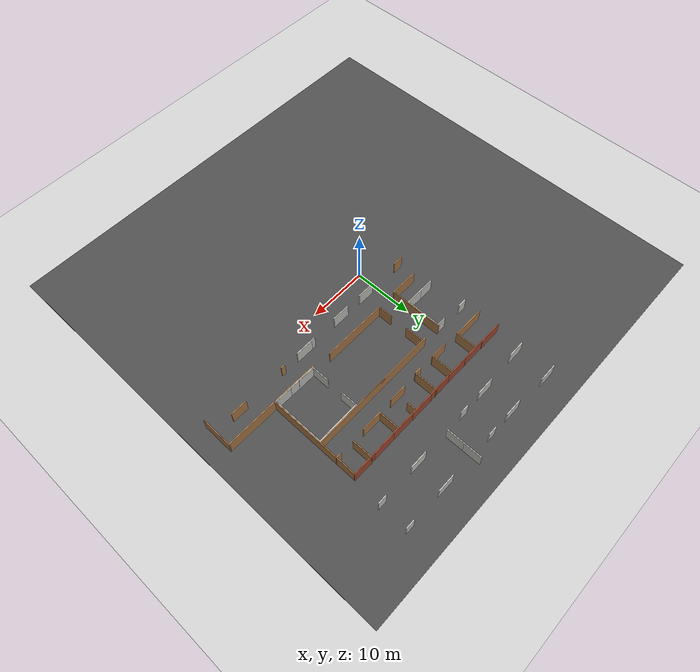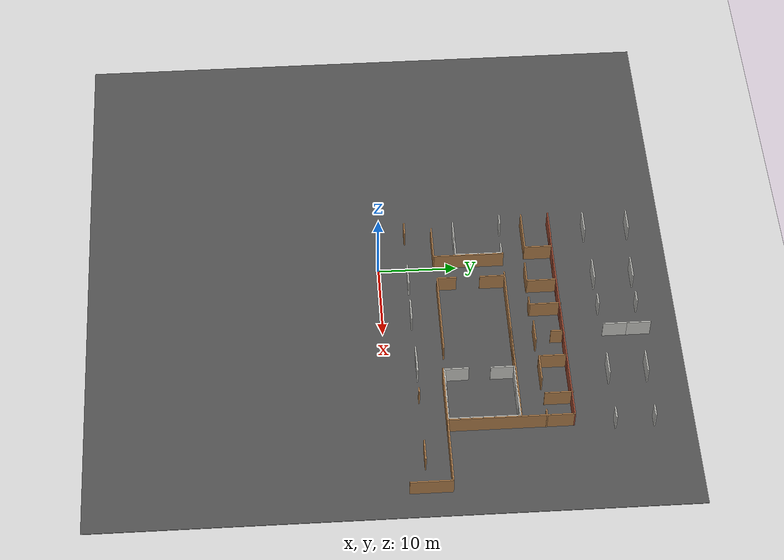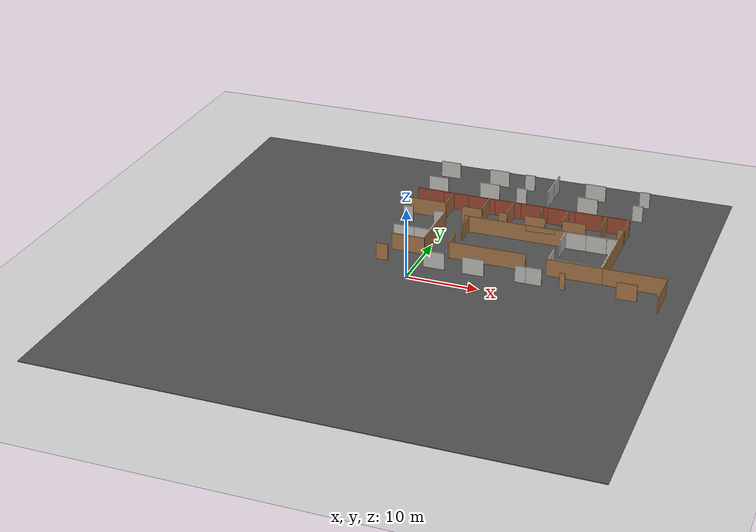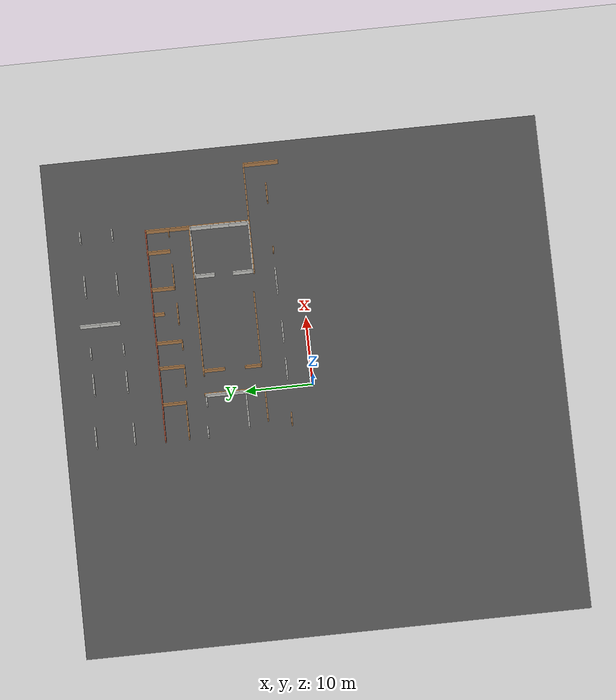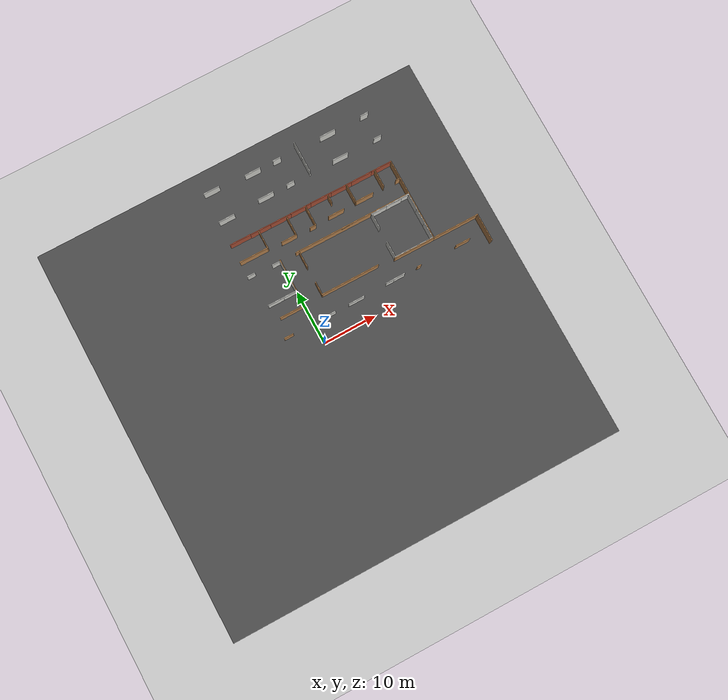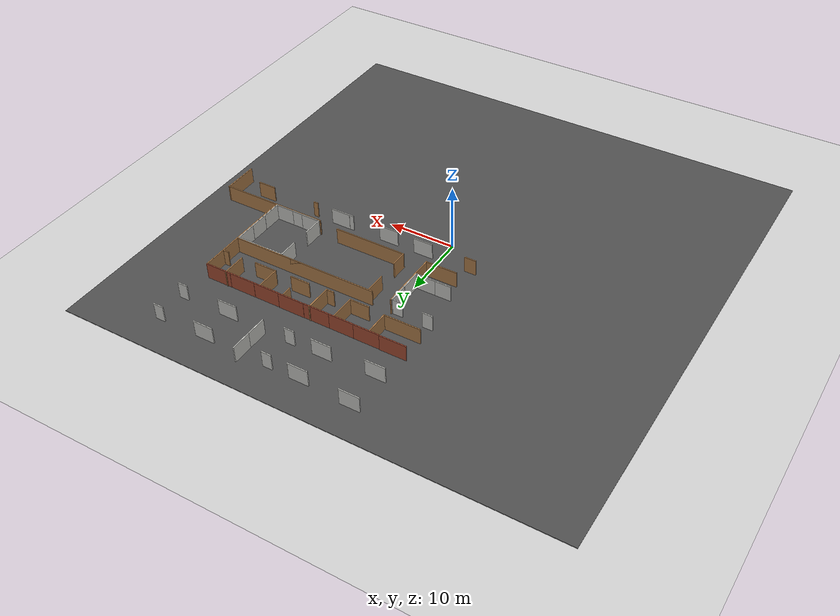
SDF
<sdf version="1.6">
 <world name="default">
  <model name="ground_plane">
   <static>1</static>
   <link name="link">
    <collision name="collision">
     <geometry><plane><normal>0 0 1</normal><size>100 100</size></plane></geometry>
     <surface><friction><ode><mu>100</mu><mu2>50</mu2></ode></friction></surface>
    </collision>
    <visual name="visual">
     <cast_shadows>0</cast_shadows>
     <geometry><plane><normal>0 0 1</normal><size>100 100</size></plane></geometry>
     <material>
      <script><uri>file://media/materials/scripts/gazebo.material</uri><name>Gazebo/Grey</name></script>
     </material>
    </visual>
   </link>
  </model>
  <model name="asphalt_plane">
   <static>1</static>
   <link name="link">
    <collision name="collision"><geometry><box><size>74 74 0.1</size></box></geometry></collision>
    <visual name="visual">
     <cast_shadows>0</cast_shadows>
     <geometry><box><size>74 74 0.1</size></box></geometry>
     <material>
      <script>
       <uri>model://asphalt_plane/materials/scripts</uri>
       <uri>model://asphalt_plane/materials/textures</uri>
       <name>vrc/asphalt</name>
      </script>
     </material>
    </visual>
   </link>
  </model>
  <model name="concrete_wall_1">
   <pose>-0.231026 14.3447 0 0 -0 0</pose>
   <link name="Wall_0">
    <collision name="Wall_0_Collision">
     <geometry><box><size>3 0.15 2.5</size></box></geometry>
     <pose>0 0 1.25 0 -0 0</pose>
    </collision>
    <visual name="Wall_0_Visual">
     <pose>0 0 1.25 0 -0 0</pose>
     <geometry><box><size>3 0.15 2.5</size></box></geometry>
     <material>
      <script><uri>file://media/materials/scripts/gazebo.material</uri><name>Gazebo/CeilingTiled</name></script>
      <ambient>1 1 1 1</ambient>
     </material>
     <meta><layer>0</layer></meta>
    </visual>
    <pose>0 0 0 0 -0 1.5708</pose>
   </link>
   <static>1</static>
  </model>
  <model name="concrete_wall_2">
   <pose>-0.252871 11.4504 0 0 -0 0</pose>
   <link name="Wall_0">
    <collision name="Wall_0_Collision">
     <geometry><box><size>3 0.15 2.5</size></box></geometry>
     <pose>0 0 1.25 0 -0 0</pose>
    </collision>
    <visual name="Wall_0_Visual">
     <pose>0 0 1.25 0 -0 0</pose>
     <geometry><box><size>3 0.15 2.5</size></box></geometry>
     <material>
      <script><uri>file://media/materials/scripts/gazebo.material</uri><name>Gazebo/CeilingTiled</name></script>
      <ambient>1 1 1 1</ambient>
     </material>
     <meta><layer>0</layer></meta>
    </visual>
    <pose>0 0 0 0 -0 1.5708</pose>
   </link>
   <static>1</static>
  </model>
  <model name="concrete_wall_6_clone_4">
   <pose>-1.64895 9.93911 0 0 -0 1.57079</pose>
   <link name="Wall_0">
    <collision name="Wall_0_Collision">
     <geometry><box><size>3 0.15 2.5</size></box></geometry>
     <pose>0 0 1.25 0 -0 0</pose>
    </collision>
    <visual name="Wall_0_Visual">
     <pose>0 0 1.25 0 -0 0</pose>
     <geometry><box><size>3 0.15 2.5</size></box></geometry>
     <material>
      <script><uri>file://media/materials/scripts/gazebo.material</uri><name>Gazebo/CeilingTiled</name></script>
      <ambient>1 1 1 1</ambient>
     </material>
     <meta><layer>0</layer></meta>
    </visual>
    <pose>0 0 0 0 -0 1.5708</pose>
   </link>
   <static>1</static>
  </model>
  <model name="concrete_wall_6_clone_5">
   <pose>-4.08866 9.93655 0 0 -0 1.57079</pose>
   <link name="Wall_0">
    <collision name="Wall_0_Collision">
     <geometry><box><size>3 0.15 2.5</size></box></geometry>
     <pose>0 0 1.25 0 -0 0</pose>
    </collision>
    <visual name="Wall_0_Visual">
     <pose>0 0 1.25 0 -0 0</pose>
     <geometry><box><size>3 0.15 2.5</size></box></geometry>
     <material>
      <script><uri>file://media/materials/scripts/gazebo.material</uri><name>Gazebo/CeilingTiled</name></script>
      <ambient>1 1 1 1</ambient>
     </material>
     <meta><layer>0</layer></meta>
    </visual>
    <pose>0 0 0 0 -0 1.5708</pose>
   </link>
   <static>1</static>
  </model>
  <model name="concrete_wall_6_clone_8">
   <pose>-1.01529 15.8 0 0 -0 1.57079</pose>
   <link name="Wall_0">
    <collision name="Wall_0_Collision">
     <geometry><box><size>1.5 0.15 2.5</size></box></geometry>
     <pose>0 0 1.25 0 -0 0</pose>
    </collision>
    <visual name="Wall_0_Visual">
     <pose>0 0 1.25 0 -0 0</pose>
     <geometry><box><size>1.5 0.15 2.5</size></box></geometry>
     <material>
      <script><uri>file://media/materials/scripts/gazebo.material</uri><name>Gazebo/CeilingTiled</name></script>
      <ambient>1 1 1 1</ambient>
     </material>
     <meta><layer>0</layer></meta>
    </visual>
    <pose>0 0 0 0 -0 1.5708</pose>
   </link>
   <static>1</static>
  </model>
  <model name="concrete_wall_6_clone_15">
   <pose>19.0082 7.09385 0 0 -0 1.57079</pose>
   <link name="Wall_0">
    <collision name="Wall_0_Collision">
     <geometry><box><size>3 0.15 2.5</size></box></geometry>
     <pose>0 0 1.25 0 -0 0</pose>
    </collision>
    <visual name="Wall_0_Visual">
     <pose>0 0 1.25 0 -0 0</pose>
     <geometry><box><size>3 0.15 2.5</size></box></geometry>
     <material>
      <script><uri>file://media/materials/scripts/gazebo.material</uri><name>Gazebo/CeilingTiled</name></script>
      <ambient>1 1 1 1</ambient>
     </material>
     <meta><layer>0</layer></meta>
    </visual>
    <pose>0 0 0 0 -0 1.5708</pose>
   </link>
   <static>1</static>
  </model>
  <model name="concrete_wall_6_clone_16">
   <pose>20.5949 7.06095 0 0 -0 1.57079</pose>
   <link name="Wall_0">
    <collision name="Wall_0_Collision">
     <geometry><box><size>3 0.15 2.5</size></box></geometry>
     <pose>0 0 1.25 0 -0 0</pose>
    </collision>
    <visual name="Wall_0_Visual">
     <pose>0 0 1.25 0 -0 0</pose>
     <geometry><box><size>3 0.15 2.5</size></box></geometry>
     <material>
      <script><uri>file://media/materials/scripts/gazebo.material</uri><name>Gazebo/CeilingTiled</name></script>
      <ambient>1 1 1 1</ambient>
     </material>
     <meta><layer>0</layer></meta>
    </visual>
    <pose>0 0 0 0 -0 1.5708</pose>
   </link>
   <static>1</static>
  </model>
  <model name="concrete_wall_6_clone_17">
   <pose>23.3706 7.05229 0 0 -0 1.57079</pose>
   <link name="Wall_0">
    <collision name="Wall_0_Collision">
     <geometry><box><size>3 0.15 2.5</size></box></geometry>
     <pose>0 0 1.25 0 -0 0</pose>
    </collision>
    <visual name="Wall_0_Visual">
     <pose>0 0 1.25 0 -0 0</pose>
     <geometry><box><size>3 0.15 2.5</size></box></geometry>
     <material>
      <script><uri>file://media/materials/scripts/gazebo.material</uri><name>Gazebo/CeilingTiled</name></script>
      <ambient>1 1 1 1</ambient>
     </material>
     <meta><layer>0</layer></meta>
    </visual>
    <pose>0 0 0 0 -0 1.5708</pose>
   </link>
   <static>1</static>
  </model>
  <model name="concrete_wall_6_clone_18">
   <pose>23.5039 15.7147 0 0 -0 1.57079</pose>
   <link name="Wall_0">
    <collision name="Wall_0_Collision">
     <geometry><box><size>3 0.15 2.5</size></box></geometry>
     <pose>0 0 1.25 0 -0 0</pose>
    </collision>
    <visual name="Wall_0_Visual">
     <pose>0 0 1.25 0 -0 0</pose>
     <geometry><box><size>3 0.15 2.5</size></box></geometry>
     <material>
      <script><uri>file://media/materials/scripts/gazebo.material</uri><name>Gazebo/CeilingTiled</name></script>
      <ambient>1 1 1 1</ambient>
     </material>
     <meta><layer>0</layer></meta>
    </visual>
    <pose>0 0 0 0 -0 1.5708</pose>
   </link>
   <static>1</static>
  </model>
  <model name="concrete_wall_6_clone_19">
   <pose>21.9639 15.6573 0 0 -0 1.57079</pose>
   <link name="Wall_0">
    <collision name="Wall_0_Collision">
     <geometry><box><size>3 0.15 2.5</size></box></geometry>
     <pose>0 0 1.25 0 -0 0</pose>
    </collision>
    <visual name="Wall_0_Visual">
     <pose>0 0 1.25 0 -0 0</pose>
     <geometry><box><size>3 0.15 2.5</size></box></geometry>
     <material>
      <script><uri>file://media/materials/scripts/gazebo.material</uri><name>Gazebo/CeilingTiled</name></script>
      <ambient>1 1 1 1</ambient>
     </material>
     <meta><layer>0</layer></meta>
    </visual>
    <pose>0 0 0 0 -0 1.5708</pose>
   </link>
   <static>1</static>
  </model>
  <model name="concrete_wall_6_clone_20">
   <pose>19.0587 15.6479 0 0 -0 1.57079</pose>
   <link name="Wall_0">
    <collision name="Wall_0_Collision">
     <geometry><box><size>3 0.15 2.5</size></box></geometry>
     <pose>0 0 1.25 0 -0 0</pose>
    </collision>
    <visual name="Wall_0_Visual">
     <pose>0 0 1.25 0 -0 0</pose>
     <geometry><box><size>3 0.15 2.5</size></box></geometry>
     <material>
      <script><uri>file://media/materials/scripts/gazebo.material</uri><name>Gazebo/CeilingTiled</name></script>
      <ambient>1 1 1 1</ambient>
     </material>
     <meta><layer>0</layer></meta>
    </visual>
    <pose>0 0 0 0 -0 1.5708</pose>
   </link>
   <static>1</static>
  </model>
  <model name="concrete_wall_15">
   <pose>24.8729 8.48253 0 0 -0 0</pose>
   <link name="Wall_0">
    <collision name="Wall_0_Collision">
     <geometry><box><size>3 0.15 2.5</size></box></geometry>
     <pose>0 0 1.25 0 -0 0</pose>
    </collision>
    <visual name="Wall_0_Visual">
     <pose>0 0 1.25 0 -0 0</pose>
     <geometry><box><size>3 0.15 2.5</size></box></geometry>
     <material>
      <script><uri>file://media/materials/scripts/gazebo.material</uri><name>Gazebo/CeilingTiled</name></script>
      <ambient>1 1 1 1</ambient>
     </material>
     <meta><layer>0</layer></meta>
    </visual>
    <pose>0 0 0 0 -0 1.5708</pose>
   </link>
   <static>1</static>
  </model>
  <model name="concrete_wall_16">
   <pose>17.5839 8.5954 0 0 -0 0</pose>
   <link name="Wall_0">
    <collision name="Wall_0_Collision">
     <geometry><box><size>3 0.15 2.5</size></box></geometry>
     <pose>0 0 1.25 0 -0 0</pose>
    </collision>
    <visual name="Wall_0_Visual">
     <pose>0 0 1.25 0 -0 0</pose>
     <geometry><box><size>3 0.15 2.5</size></box></geometry>
     <material>
      <script><uri>file://media/materials/scripts/gazebo.material</uri><name>Gazebo/CeilingTiled</name></script>
      <ambient>1 1 1 1</ambient>
     </material>
     <meta><layer>0</layer></meta>
    </visual>
    <pose>0 0 0 0 -0 1.5708</pose>
   </link>
   <static>1</static>
  </model>
  <model name="concrete_wall_18">
   <pose>17.6374 14.261 0 0 -0 0</pose>
   <link name="Wall_0">
    <collision name="Wall_0_Collision">
     <geometry><box><size>3 0.15 2.5</size></box></geometry>
     <pose>0 0 1.25 0 -0 0</pose>
    </collision>
    <visual name="Wall_0_Visual">
     <pose>0 0 1.25 0 -0 0</pose>
     <geometry><box><size>3 0.15 2.5</size></box></geometry>
     <material>
      <script><uri>file://media/materials/scripts/gazebo.material</uri><name>Gazebo/CeilingTiled</name></script>
      <ambient>1 1 1 1</ambient>
     </material>
     <meta><layer>0</layer></meta>
    </visual>
    <pose>0 0 0 0 -0 1.5708</pose>
   </link>
   <static>1</static>
  </model>
  <model name="concrete_wall_19">
   <pose>24.8866 11.194 0 0 -0 0</pose>
   <link name="Wall_0">
    <collision name="Wall_0_Collision">
     <geometry><box><size>3 0.15 2.5</size></box></geometry>
     <pose>0 0 1.25 0 -0 0</pose>
    </collision>
    <visual name="Wall_0_Visual">
     <pose>0 0 1.25 0 -0 0</pose>
     <geometry><box><size>3 0.15 2.5</size></box></geometry>
     <material>
      <script><uri>file://media/materials/scripts/gazebo.material</uri><name>Gazebo/CeilingTiled</name></script>
      <ambient>1 1 1 1</ambient>
     </material>
     <meta><layer>0</layer></meta>
    </visual>
    <pose>0 0 0 0 -0 1.5708</pose>
   </link>
   <static>1</static>
  </model>
  <model name="concrete_wall_20">
   <pose>24.896 14.1844 0 0 -0 0</pose>
   <link name="Wall_0">
    <collision name="Wall_0_Collision">
     <geometry><box><size>3 0.15 2.5</size></box></geometry>
     <pose>0 0 1.25 0 -0 0</pose>
    </collision>
    <visual name="Wall_0_Visual">
     <pose>0 0 1.25 0 -0 0</pose>
     <geometry><box><size>3 0.15 2.5</size></box></geometry>
     <material>
      <script><uri>file://media/materials/scripts/gazebo.material</uri><name>Gazebo/CeilingTiled</name></script>
      <ambient>1 1 1 1</ambient>
     </material>
     <meta><layer>0</layer></meta>
    </visual>
    <pose>0 0 0 0 -0 1.5708</pose>
   </link>
   <static>1</static>
  </model>
  <model name="willowgarage_v1_1">
   <pose>-14.3408 -3.86286 0 0 -0 0</pose>
   <link name="Wall_100">
    <collision name="Wall_100_Collision">
     <geometry><box><size>3.5 0.15 2.5</size></box></geometry>
     <pose>0 0 1.25 0 -0 0</pose>
    </collision>
    <visual name="Wall_100_Visual">
     <pose>0 0 1.25 0 -0 0</pose>
     <geometry><box><size>3.5 0.15 2.5</size></box></geometry>
     <material>
      <script><uri>file://media/materials/scripts/gazebo.material</uri><name>Gazebo/Wood</name></script>
      <ambient>1 1 1 1</ambient>
     </material>
     <meta><layer>0</layer></meta>
    </visual>
    <pose>32.2598 22.7229 0 0 -0 3.14159</pose>
   </link>
   <link name="Wall_101">
    <collision name="Wall_101_Collision">
     <geometry><box><size>3.5 0.15 2.5</size></box></geometry>
     <pose>0 0 1.25 0 -0 0</pose>
    </collision>
    <visual name="Wall_101_Visual">
     <pose>0 0 1.25 0 -0 0</pose>
     <geometry><box><size>3.5 0.15 2.5</size></box></geometry>
     <material>
      <script><uri>file://media/materials/scripts/gazebo.material</uri><name>Gazebo/Wood</name></script>
      <ambient>1 1 1 1</ambient>
     </material>
     <meta><layer>0</layer></meta>
    </visual>
    <pose>30.5848 24.3979 0 0 -0 1.5708</pose>
   </link>
   <link name="Wall_105">
    <collision name="Wall_105_Collision">
     <geometry><box><size>3 0.15 2.5</size></box></geometry>
     <pose>0 0 1.25 0 -0 0</pose>
    </collision>
    <visual name="Wall_105_Visual">
     <pose>0 0 1.25 0 -0 0</pose>
     <geometry><box><size>3 0.15 2.5</size></box></geometry>
     <material>
      <script><uri>file://media/materials/scripts/gazebo.material</uri><name>Gazebo/Wood</name></script>
      <ambient>1 1 1 1</ambient>
     </material>
     <meta><layer>0</layer></meta>
    </visual>
    <pose>26.6647 22.5998 0 0 -0 3.14159</pose>
   </link>
   <link name="Wall_107">
    <collision name="Wall_107_Collision">
     <geometry><box><size>1.5 0.15 2.5</size></box></geometry>
     <pose>0 0 1.25 0 -0 0</pose>
    </collision>
    <visual name="Wall_107_Visual">
     <pose>0 0 1.25 0 -0 0</pose>
     <geometry><box><size>1.5 0.15 2.5</size></box></geometry>
     <material>
      <script><uri>file://media/materials/scripts/gazebo.material</uri><name>Gazebo/Wood</name></script>
      <ambient>1 1 1 1</ambient>
     </material>
     <meta><layer>0</layer></meta>
    </visual>
    <pose>26.8591 25.3088 0 0 0 -1.5708</pose>
   </link>
   <link name="Wall_109">
    <collision name="Wall_109_Collision">
     <geometry><box><size>4 0.15 2.5</size></box></geometry>
     <pose>0 0 1.25 0 -0 0</pose>
    </collision>
    <visual name="Wall_109_Visual">
     <pose>0 0 1.25 0 -0 0</pose>
     <geometry><box><size>4 0.15 2.5</size></box></geometry>
     <material>
      <script><uri>file://media/materials/scripts/gazebo.material</uri><name>Gazebo/Wood</name></script>
      <ambient>1 1 1 1</ambient>
     </material>
     <meta><layer>0</layer></meta>
    </visual>
    <pose>22.5522 24.305 0 0 0 -1.5708</pose>
   </link>
   <link name="Wall_110">
    <collision name="Wall_110_Collision">
     <geometry><box><size>1.25 0.15 2.5</size></box></geometry>
     <pose>0 0 1.25 0 -0 0</pose>
    </collision>
    <visual name="Wall_110_Visual">
     <pose>0 0 1.25 0 -0 0</pose>
     <geometry><box><size>1.25 0.15 2.5</size></box></geometry>
     <material>
      <script><uri>file://media/materials/scripts/gazebo.material</uri><name>Gazebo/Wood</name></script>
      <ambient>1 1 1 1</ambient>
     </material>
     <meta><layer>0</layer></meta>
    </visual>
    <pose>22.0022 22.38 0 0 -0 3.14159</pose>
   </link>
   <link name="Wall_112">
    <collision name="Wall_112_Collision">
     <geometry><box><size>3.75 0.15 2.5</size></box></geometry>
     <pose>0 0 1.25 0 -0 0</pose>
    </collision>
    <visual name="Wall_112_Visual">
     <pose>0 0 1.25 0 -0 0</pose>
     <geometry><box><size>3.75 0.15 2.5</size></box></geometry>
     <material>
      <script><uri>file://media/materials/scripts/gazebo.material</uri><name>Gazebo/Wood</name></script>
      <ambient>1 1 1 1</ambient>
     </material>
     <meta><layer>0</layer></meta>
    </visual>
    <pose>18.799 24.2454 0 0 0 -1.5708</pose>
   </link>
   <link name="Wall_113">
    <collision name="Wall_113_Collision">
     <geometry><box><size>3 0.15 2.5</size></box></geometry>
     <pose>0 0 1.25 0 -0 0</pose>
    </collision>
    <visual name="Wall_113_Visual">
     <pose>0 0 1.25 0 -0 0</pose>
     <geometry><box><size>3 0.15 2.5</size></box></geometry>
     <material>
      <script><uri>file://media/materials/scripts/gazebo.material</uri><name>Gazebo/Wood</name></script>
      <ambient>1 1 1 1</ambient>
     </material>
     <meta><layer>0</layer></meta>
    </visual>
    <pose>17.374 22.4454 0 0 -0 3.14159</pose>
   </link>
   <link name="Wall_115">
    <collision name="Wall_115_Collision">
     <geometry><box><size>3.5 0.15 2.5</size></box></geometry>
     <pose>0 0 1.25 0 -0 0</pose>
    </collision>
    <visual name="Wall_115_Visual">
     <pose>0 0 1.25 0 -0 0</pose>
     <geometry><box><size>3.5 0.15 2.5</size></box></geometry>
     <material>
      <script><uri>file://media/materials/scripts/gazebo.material</uri><name>Gazebo/Wood</name></script>
      <ambient>1 1 1 1</ambient>
     </material>
     <meta><layer>0</layer></meta>
    </visual>
    <pose>13.3845 24.3704 0 0 0 -1.5708</pose>
   </link>
   <link name="Wall_125">
    <collision name="Wall_125_Collision">
     <geometry><box><size>5.5 0.15 2.5</size></box></geometry>
     <pose>0 0 1.25 0 -0 0</pose>
    </collision>
    <visual name="Wall_125_Visual">
     <pose>0 0 1.25 0 -0 0</pose>
     <geometry><box><size>5.5 0.15 2.5</size></box></geometry>
     <material>
      <script><uri>file://media/materials/scripts/gazebo.material</uri><name>Gazebo/Wood</name></script>
      <ambient>1 1 1 1</ambient>
     </material>
     <meta><layer>0</layer></meta>
    </visual>
    <pose>10.7066 22.7229 0 0 -0 0</pose>
   </link>
   <link name="Wall_174">
    <collision name="Wall_174_Collision">
     <geometry><box><size>22.25 0.15 2.5</size></box></geometry>
     <pose>0 0 1.25 0 -0 0</pose>
    </collision>
    <visual name="Wall_174_Visual">
     <pose>0 0 1.25 0 -0 0</pose>
     <geometry><box><size>22.25 0.15 2.5</size></box></geometry>
     <material>
      <script><uri>file://media/materials/scripts/gazebo.material</uri><name>Gazebo/Wood</name></script>
      <ambient>1 1 1 1</ambient>
     </material>
     <meta><layer>0</layer></meta>
    </visual>
    <pose>28.2902 19.6947 0 0 -0 3.14159</pose>
   </link>
   <link name="Wall_17411">
    <collision name="Wall_17411_Collision">
     <geometry><box><size>4.2 0.15 2.5</size></box></geometry>
     <pose>0 0 1.25 0 -0 0</pose>
    </collision>
    <visual name="Wall_174_Visual">
     <pose>0 0 1.25 0 -0 0</pose>
     <geometry><box><size>4.2 0.15 2.5</size></box></geometry>
     <material>
      <script><uri>file://media/materials/scripts/gazebo.material</uri><name>Gazebo/Wood</name></script>
      <ambient>1 1 1 1</ambient>
     </material>
     <meta><layer>0</layer></meta>
    </visual>
    <pose>28.2902 19.6947 0 0 -0 3.14159</pose>
   </link>
   <link name="Wall_18">
    <collision name="Wall_18_Collision">
     <geometry><box><size>15.5 0.15 2.5</size></box></geometry>
     <pose>0 0 1.25 0 -0 0</pose>
    </collision>
    <visual name="Wall_18_Visual">
     <pose>0 0 1.25 0 -0 0</pose>
     <geometry><box><size>15.5 0.15 2.5</size></box></geometry>
     <material>
      <script><uri>file://media/materials/scripts/gazebo.material</uri><name>Gazebo/Wood</name></script>
      <ambient>1 1 1 1</ambient>
     </material>
     <meta><layer>0</layer></meta>
    </visual>
    <pose>39.3855 18.4709 0 0 0 -1.5708</pose>
   </link>
   <link name="Wall_188">
    <collision name="Wall_188_Collision">
     <geometry><box><size>11 0.15 2.5</size></box></geometry>
     <pose>0 0 1.25 0 -0 0</pose>
    </collision>
    <visual name="Wall_188_Visual">
     <pose>0 0 1.25 0 -0 0</pose>
     <geometry><box><size>11 0.15 2.5</size></box></geometry>
     <material>
      <script><uri>file://media/materials/scripts/gazebo.material</uri><name>Gazebo/Wood</name></script>
      <ambient>1 1 1 1</ambient>
     </material>
     <meta><layer>0</layer></meta>
    </visual>
    <pose>23.2094 11.1423 0 0 -0 3.14159</pose>
   </link>
   <link name="Wall_189">
    <collision name="Wall_189_Collision">
     <geometry><box><size>2.5 0.15 2.5</size></box></geometry>
     <pose>0 0 1.25 0 -0 0</pose>
    </collision>
    <visual name="Wall_189_Visual">
     <pose>0 0 1.25 0 -0 0</pose>
     <geometry><box><size>2.5 0.15 2.5</size></box></geometry>
     <material>
      <script><uri>file://media/materials/scripts/gazebo.material</uri><name>Gazebo/Wood</name></script>
      <ambient>1 1 1 1</ambient>
     </material>
     <meta><layer>0</layer></meta>
    </visual>
    <pose>17.7844 12.3173 0 0 -0 1.5708</pose>
   </link>
   <link name="Wall_19">
    <collision name="Wall_19_Collision">
     <geometry><box><size>7.75 0.15 2.5</size></box></geometry>
     <pose>0 0 1.25 0 -0 0</pose>
    </collision>
    <visual name="Wall_19_Visual">
     <pose>0 0 1.25 0 -0 0</pose>
     <geometry><box><size>7.75 0.15 2.5</size></box></geometry>
     <material>
      <script><uri>file://media/materials/scripts/gazebo.material</uri><name>Gazebo/Wood</name></script>
      <ambient>1 1 1 1</ambient>
     </material>
     <meta><layer>0</layer></meta>
    </visual>
    <pose>35.5855 10.7959 0 0 -0 3.14159</pose>
   </link>
   <link name="Wall_192">
    <collision name="Wall_192_Collision">
     <geometry><box><size>3.25 0.15 2.5</size></box></geometry>
     <pose>0 0 1.25 0 -0 0</pose>
    </collision>
    <visual name="Wall_192_Visual">
     <pose>0 0 1.25 0 -0 0</pose>
     <geometry><box><size>3.25 0.15 2.5</size></box></geometry>
     <material>
      <script><uri>file://media/materials/scripts/gazebo.material</uri><name>Gazebo/Wood</name></script>
      <ambient>1 1 1 1</ambient>
     </material>
     <meta><layer>0</layer></meta>
    </visual>
    <pose>17.8055 18.1447 0 0 0 -1.5708</pose>
   </link>
   <link name="Wall_197">
    <collision name="Wall_197_Collision">
     <geometry><box><size>9 0.15 2.5</size></box></geometry>
     <pose>0 0 1.25 0 -0 0</pose>
    </collision>
    <visual name="Wall_197_Visual">
     <pose>0 0 1.25 0 -0 0</pose>
     <geometry><box><size>9 0.15 2.5</size></box></geometry>
     <material>
      <script><uri>file://media/materials/scripts/gazebo.material</uri><name>Gazebo/Wood</name></script>
      <ambient>1 1 1 1</ambient>
     </material>
     <meta><layer>0</layer></meta>
    </visual>
    <pose>14.2371 15.3928 0 0 0 -1.5708</pose>
   </link>
   <link name="Wall_198">
    <collision name="Wall_198_Collision">
     <geometry><box><size>4.75 0.15 2.5</size></box></geometry>
     <pose>0 0 1.25 0 -0 0</pose>
    </collision>
    <visual name="Wall_198_Visual">
     <pose>0 0 1.25 0 -0 0</pose>
     <geometry><box><size>4.75 0.15 2.5</size></box></geometry>
     <material>
      <script><uri>file://media/materials/scripts/gazebo.material</uri><name>Gazebo/Wood</name></script>
      <ambient>1 1 1 1</ambient>
     </material>
     <meta><layer>0</layer></meta>
    </visual>
    <pose>11.9371 10.9678 0 0 -0 3.14159</pose>
   </link>
   <link name="Wall_315">
    <collision name="Wall_315_Collision">
     <geometry><box><size>1.75 0.15 2.5</size></box></geometry>
     <pose>0 0 1.25 0 -0 0</pose>
    </collision>
    <visual name="Wall_315_Visual">
     <pose>0 0 1.25 0 -0 0</pose>
     <geometry><box><size>1.75 0.15 2.5</size></box></geometry>
     <material>
      <script><uri>file://media/materials/scripts/gazebo.material</uri><name>Gazebo/Wood</name></script>
      <ambient>1 1 1 1</ambient>
     </material>
     <meta><layer>0</layer></meta>
    </visual>
    <pose>9.4019 7.51935 0 0 -0 3.14159</pose>
   </link>
   <link name="Wall_338">
    <collision name="Wall_338_Collision">
     <geometry><box><size>8.75 0.15 2.5</size></box></geometry>
     <pose>0 0 1.25 0 -0 0</pose>
    </collision>
    <visual name="Wall_338_Visual">
     <pose>0 0 1.25 0 -0 0</pose>
     <geometry><box><size>8.75 0.15 2.5</size></box></geometry>
     <material>
      <script><uri>file://media/materials/scripts/gazebo.material</uri><name>Gazebo/Wood</name></script>
      <ambient>1 1 1 1</ambient>
     </material>
     <meta><layer>0</layer></meta>
    </visual>
    <pose>43.6855 10.7959 0 0 -0 0</pose>
   </link>
   <link name="Wall_339">
    <collision name="Wall_339_Collision">
     <geometry><box><size>5.25 0.15 2.5</size></box></geometry>
     <pose>0 0 1.25 0 -0 0</pose>
    </collision>
    <visual name="Wall_339_Visual">
     <pose>0 0 1.25 0 -0 0</pose>
     <geometry><box><size>5.25 0.15 2.5</size></box></geometry>
     <material>
      <script><uri>file://media/materials/scripts/gazebo.material</uri><name>Gazebo/Wood</name></script>
      <ambient>1 1 1 1</ambient>
     </material>
     <meta><layer>0</layer></meta>
    </visual>
    <pose>47.9855 8.2459 0 0 0 -1.5708</pose>
   </link>
   <link name="Wall_385">
    <collision name="Wall_385_Collision">
     <geometry><box><size>2.75 0.15 2.5</size></box></geometry>
     <pose>0 0 1.25 0 -0 0</pose>
    </collision>
    <visual name="Wall_385_Visual">
     <pose>0 0 1.25 0 -0 0</pose>
     <geometry><box><size>2.75 0.15 2.5</size></box></geometry>
     <material>
      <script><uri>file://media/materials/scripts/gazebo.material</uri><name>Gazebo/Wood</name></script>
      <ambient>1 1 1 1</ambient>
     </material>
     <meta><layer>0</layer></meta>
    </visual>
    <pose>43.4424 7.74692 0 0 -0 3.14159</pose>
   </link>
   <link name="Wall_423">
    <collision name="Wall_423_Collision">
     <geometry><box><size>0.75 0.15 2.5</size></box></geometry>
     <pose>0 0 1.25 0 -0 0</pose>
    </collision>
    <visual name="Wall_423_Visual">
     <pose>0 0 1.25 0 -0 0</pose>
     <geometry><box><size>0.75 0.15 2.5</size></box></geometry>
     <material>
      <script><uri>file://media/materials/scripts/gazebo.material</uri><name>Gazebo/Wood</name></script>
      <ambient>1 1 1 1</ambient>
     </material>
     <meta><layer>0</layer></meta>
    </visual>
    <pose>34.7867 7.65145 0 0 -0 3.14159</pose>
   </link>
   <link name="Wall_96">
    <collision name="Wall_96_Collision">
     <geometry><box><size>3.5 0.15 2.5</size></box></geometry>
     <pose>0 0 1.25 0 -0 0</pose>
    </collision>
    <visual name="Wall_96_Visual">
     <pose>0 0 1.25 0 -0 0</pose>
     <geometry><box><size>3.5 0.15 2.5</size></box></geometry>
     <material>
      <script><uri>file://media/materials/scripts/gazebo.material</uri><name>Gazebo/Wood</name></script>
      <ambient>1 1 1 1</ambient>
     </material>
     <meta><layer>0</layer></meta>
    </visual>
    <pose>36.1498 24.555 0 0 0 -1.5708</pose>
   </link>
   <link name="Wall_98">
    <collision name="Wall_98_Collision">
     <geometry><box><size>1 0.15 2.5</size></box></geometry>
     <pose>0 0 1.25 0 -0 0</pose>
    </collision>
    <visual name="Wall_98_Visual">
     <pose>0 0 1.25 0 -0 0</pose>
     <geometry><box><size>1 0.15 2.5</size></box></geometry>
     <material>
      <script><uri>file://media/materials/scripts/gazebo.material</uri><name>Gazebo/Wood</name></script>
      <ambient>1 1 1 1</ambient>
     </material>
     <meta><layer>0</layer></meta>
    </visual>
    <pose>38.9858 22.7844 0 0 -0 3.14159</pose>
   </link>
   <static>1</static>
  </model>
  <model name="concrete_wall_6_clone_8_clone">
   <pose>-5.68382 16.0275 0 0 -0 1.57079</pose>
   <link name="Wall_0">
    <collision name="Wall_0_Collision">
     <geometry><box><size>1.5 0.15 2.5</size></box></geometry>
     <pose>0 0 1.25 0 -0 0</pose>
    </collision>
    <visual name="Wall_0_Visual">
     <pose>0 0 1.25 0 -0 0</pose>
     <geometry><box><size>1.5 0.15 2.5</size></box></geometry>
     <material>
      <script><uri>file://media/materials/scripts/gazebo.material</uri><name>Gazebo/CeilingTiled</name></script>
      <ambient>1 1 1 1</ambient>
     </material>
     <meta><layer>0</layer></meta>
    </visual>
    <pose>0 0 0 0 -0 1.5708</pose>
   </link>
   <static>1</static>
  </model>
  <model name="concrete_wall_6_clone_12_clone">
   <pose>-4.79729 26.8316 0 0 -0 1.57079</pose>
   <link name="Wall_0">
    <collision name="Wall_0_Collision">
     <geometry><box><size>3 0.15 2.5</size></box></geometry>
     <pose>0 0 1.25 0 -0 0</pose>
    </collision>
    <visual name="Wall_0_Visual">
     <pose>0 0 1.25 0 -0 0</pose>
     <geometry><box><size>3 0.15 2.5</size></box></geometry>
     <material>
      <script><uri>file://media/materials/scripts/gazebo.material</uri><name>Gazebo/CeilingTiled</name></script>
      <ambient>1 1 1 1</ambient>
     </material>
     <meta><layer>0</layer></meta>
    </visual>
    <pose>0 0 0 0 -0 1.5708</pose>
   </link>
   <static>1</static>
  </model>
  <model name="concrete_wall_6_clone_12_clone_0">
   <pose>-4.82194 32.472 0 0 -0 1.57079</pose>
   <link name="Wall_0">
    <collision name="Wall_0_Collision">
     <geometry><box><size>3 0.15 2.5</size></box></geometry>
     <pose>0 0 1.25 0 -0 0</pose>
    </collision>
    <visual name="Wall_0_Visual">
     <pose>0 0 1.25 0 -0 0</pose>
     <geometry><box><size>3 0.15 2.5</size></box></geometry>
     <material>
      <script><uri>file://media/materials/scripts/gazebo.material</uri><name>Gazebo/CeilingTiled</name></script>
      <ambient>1 1 1 1</ambient>
     </material>
     <meta><layer>0</layer></meta>
    </visual>
    <pose>0 0 0 0 -0 1.5708</pose>
   </link>
   <static>1</static>
  </model>
  <model name="concrete_wall_6_clone_12_clone_1">
   <pose>2.99119 27.1623 0 0 -0 1.57079</pose>
   <link name="Wall_0">
    <collision name="Wall_0_Collision">
     <geometry><box><size>3 0.15 2.5</size></box></geometry>
     <pose>0 0 1.25 0 -0 0</pose>
    </collision>
    <visual name="Wall_0_Visual">
     <pose>0 0 1.25 0 -0 0</pose>
     <geometry><box><size>3 0.15 2.5</size></box></geometry>
     <material>
      <script><uri>file://media/materials/scripts/gazebo.material</uri><name>Gazebo/CeilingTiled</name></script>
      <ambient>1 1 1 1</ambient>
     </material>
     <meta><layer>0</layer></meta>
    </visual>
    <pose>0 0 0 0 -0 1.5708</pose>
   </link>
   <static>1</static>
  </model>
  <model name="concrete_wall_6_clone_12_clone_2">
   <pose>2.97705 32.057 0 0 -0 1.57079</pose>
   <link name="Wall_0">
    <collision name="Wall_0_Collision">
     <geometry><box><size>3 0.15 2.5</size></box></geometry>
     <pose>0 0 1.25 0 -0 0</pose>
    </collision>
    <visual name="Wall_0_Visual">
     <pose>0 0 1.25 0 -0 0</pose>
     <geometry><box><size>3 0.15 2.5</size></box></geometry>
     <material>
      <script><uri>file://media/materials/scripts/gazebo.material</uri><name>Gazebo/CeilingTiled</name></script>
      <ambient>1 1 1 1</ambient>
     </material>
     <meta><layer>0</layer></meta>
    </visual>
    <pose>0 0 0 0 -0 1.5708</pose>
   </link>
   <static>1</static>
  </model>
  <model name="concrete_wall_6_clone_12_clone_3">
   <pose>17.7275 31.982 0 0 -0 1.57079</pose>
   <link name="Wall_0">
    <collision name="Wall_0_Collision">
     <geometry><box><size>3 0.15 2.5</size></box></geometry>
     <pose>0 0 1.25 0 -0 0</pose>
    </collision>
    <visual name="Wall_0_Visual">
     <pose>0 0 1.25 0 -0 0</pose>
     <geometry><box><size>3 0.15 2.5</size></box></geometry>
     <material>
      <script><uri>file://media/materials/scripts/gazebo.material</uri><name>Gazebo/CeilingTiled</name></script>
      <ambient>1 1 1 1</ambient>
     </material>
     <meta><layer>0</layer></meta>
    </visual>
    <pose>0 0 0 0 -0 1.5708</pose>
   </link>
   <static>1</static>
  </model>
  <model name="concrete_wall_6_clone_12_clone_4">
   <pose>17.7298 27.2292 0 0 -0 1.57079</pose>
   <link name="Wall_0">
    <collision name="Wall_0_Collision">
     <geometry><box><size>3 0.15 2.5</size></box></geometry>
     <pose>0 0 1.25 0 -0 0</pose>
    </collision>
    <visual name="Wall_0_Visual">
     <pose>0 0 1.25 0 -0 0</pose>
     <geometry><box><size>3 0.15 2.5</size></box></geometry>
     <material>
      <script><uri>file://media/materials/scripts/gazebo.material</uri><name>Gazebo/CeilingTiled</name></script>
      <ambient>1 1 1 1</ambient>
     </material>
     <meta><layer>0</layer></meta>
    </visual>
    <pose>0 0 0 0 -0 1.5708</pose>
   </link>
   <static>1</static>
  </model>
  <model name="concrete_wall_6_clone_8_clone_2_clone_1">
   <pose>7.73046 32.0377 0 0 -0 1.57079</pose>
   <link name="Wall_0">
    <collision name="Wall_0_Collision">
     <geometry><box><size>1.5 0.15 2.5</size></box></geometry>
     <pose>0 0 1.25 0 -0 0</pose>
    </collision>
    <visual name="Wall_0_Visual">
     <pose>0 0 1.25 0 -0 0</pose>
     <geometry><box><size>1.5 0.15 2.5</size></box></geometry>
     <material>
      <script><uri>file://media/materials/scripts/gazebo.material</uri><name>Gazebo/CeilingTiled</name></script>
      <ambient>1 1 1 1</ambient>
     </material>
     <meta><layer>0</layer></meta>
    </visual>
    <pose>0 0 0 0 -0 1.5708</pose>
   </link>
   <static>1</static>
  </model>
  <model name="concrete_wall_6_clone_8_clone_2_clone_2">
   <pose>7.8402 27.1882 0 0 -0 1.57079</pose>
   <link name="Wall_0">
    <collision name="Wall_0_Collision">
     <geometry><box><size>1.5 0.15 2.5</size></box></geometry>
     <pose>0 0 1.25 0 -0 0</pose>
    </collision>
    <visual name="Wall_0_Visual">
     <pose>0 0 1.25 0 -0 0</pose>
     <geometry><box><size>1.5 0.15 2.5</size></box></geometry>
     <material>
      <script><uri>file://media/materials/scripts/gazebo.material</uri><name>Gazebo/CeilingTiled</name></script>
      <ambient>1 1 1 1</ambient>
     </material>
     <meta><layer>0</layer></meta>
    </visual>
    <pose>0 0 0 0 -0 1.5708</pose>
   </link>
   <static>1</static>
  </model>
  <model name="concrete_wall_6_clone_8_clone_2_clone_3">
   <pose>25.1015 27.2468 0 0 -0 1.57079</pose>
   <link name="Wall_0">
    <collision name="Wall_0_Collision">
     <geometry><box><size>1.5 0.15 2.5</size></box></geometry>
     <pose>0 0 1.25 0 -0 0</pose>
    </collision>
    <visual name="Wall_0_Visual">
     <pose>0 0 1.25 0 -0 0</pose>
     <geometry><box><size>1.5 0.15 2.5</size></box></geometry>
     <material>
      <script><uri>file://media/materials/scripts/gazebo.material</uri><name>Gazebo/CeilingTiled</name></script>
      <ambient>1 1 1 1</ambient>
     </material>
     <meta><layer>0</layer></meta>
    </visual>
    <pose>0 0 0 0 -0 1.5708</pose>
   </link>
   <static>1</static>
  </model>
  <model name="concrete_wall_6_clone_8_clone_2_clone_4">
   <pose>25.0424 32.0052 0 0 -0 1.57079</pose>
   <link name="Wall_0">
    <collision name="Wall_0_Collision">
     <geometry><box><size>1.5 0.15 2.5</size></box></geometry>
     <pose>0 0 1.25 0 -0 0</pose>
    </collision>
    <visual name="Wall_0_Visual">
     <pose>0 0 1.25 0 -0 0</pose>
     <geometry><box><size>1.5 0.15 2.5</size></box></geometry>
     <material>
      <script><uri>file://media/materials/scripts/gazebo.material</uri><name>Gazebo/CeilingTiled</name></script>
      <ambient>1 1 1 1</ambient>
     </material>
     <meta><layer>0</layer></meta>
    </visual>
    <pose>0 0 0 0 -0 1.5708</pose>
   </link>
   <static>1</static>
  </model>
  <model name="concrete_wall_2_clone">
   <pose>11.8081 31.8047 0 0 -0 0</pose>
   <link name="Wall_0">
    <collision name="Wall_0_Collision">
     <geometry><box><size>3 0.15 2.5</size></box></geometry>
     <pose>0 0 1.25 0 -0 0</pose>
    </collision>
    <visual name="Wall_0_Visual">
     <pose>0 0 1.25 0 -0 0</pose>
     <geometry><box><size>3 0.15 2.5</size></box></geometry>
     <material>
      <script><uri>file://media/materials/scripts/gazebo.material</uri><name>Gazebo/CeilingTiled</name></script>
      <ambient>1 1 1 1</ambient>
     </material>
     <meta><layer>0</layer></meta>
    </visual>
    <pose>0 0 0 0 -0 1.5708</pose>
   </link>
   <static>1</static>
  </model>
  <model name="concrete_wall_2_clone_0">
   <pose>11.8044 28.8259 0 0 -0 0</pose>
   <link name="Wall_0">
    <collision name="Wall_0_Collision">
     <geometry><box><size>3 0.15 2.5</size></box></geometry>
     <pose>0 0 1.25 0 -0 0</pose>
    </collision>
    <visual name="Wall_0_Visual">
     <pose>0 0 1.25 0 -0 0</pose>
     <geometry><box><size>3 0.15 2.5</size></box></geometry>
     <material>
      <script><uri>file://media/materials/scripts/gazebo.material</uri><name>Gazebo/CeilingTiled</name></script>
      <ambient>1 1 1 1</ambient>
     </material>
     <meta><layer>0</layer></meta>
    </visual>
    <pose>0 0 0 0 -0 1.5708</pose>
   </link>
   <static>1</static>
  </model>
  <model name="brick_wall_1_clone_9">
   <pose>23.1331 22.2959 0 0 -0 0</pose>
   <link name="Wall_0">
    <collision name="Wall_0_Collision">
     <geometry><box><size>4 0.15 2.5</size></box></geometry>
     <pose>0 0 1.25 0 -0 0</pose>
    </collision>
    <visual name="Wall_0_Visual">
     <pose>0 0 1.25 0 -0 0</pose>
     <geometry><box><size>4 0.15 2.5</size></box></geometry>
     <material>
      <script><uri>file://media/materials/scripts/gazebo.material</uri><name>Gazebo/Bricks</name></script>
      <ambient>1 1 1 1</ambient>
     </material>
     <meta><layer>0</layer></meta>
    </visual>
   </link>
   <static>1</static>
  </model>
  <model name="brick_wall_1_clone_10">
   <pose>19.1783 22.2878 0 0 -0 0</pose>
   <link name="Wall_0">
    <collision name="Wall_0_Collision">
     <geometry><box><size>4 0.15 2.5</size></box></geometry>
     <pose>0 0 1.25 0 -0 0</pose>
    </collision>
    <visual name="Wall_0_Visual">
     <pose>0 0 1.25 0 -0 0</pose>
     <geometry><box><size>4 0.15 2.5</size></box></geometry>
     <material>
      <script><uri>file://media/materials/scripts/gazebo.material</uri><name>Gazebo/Bricks</name></script>
      <ambient>1 1 1 1</ambient>
     </material>
     <meta><layer>0</layer></meta>
    </visual>
   </link>
   <static>1</static>
  </model>
  <model name="brick_wall_1_clone_11">
   <pose>15.1921 22.2795 0 0 -0 0</pose>
   <link name="Wall_0">
    <collision name="Wall_0_Collision">
     <geometry><box><size>4 0.15 2.5</size></box></geometry>
     <pose>0 0 1.25 0 -0 0</pose>
    </collision>
    <visual name="Wall_0_Visual">
     <pose>0 0 1.25 0 -0 0</pose>
     <geometry><box><size>4 0.15 2.5</size></box></geometry>
     <material>
      <script><uri>file://media/materials/scripts/gazebo.material</uri><name>Gazebo/Bricks</name></script>
      <ambient>1 1 1 1</ambient>
     </material>
     <meta><layer>0</layer></meta>
    </visual>
   </link>
   <static>1</static>
  </model>
  <model name="brick_wall_1_clone_12">
   <pose>11.2231 22.3106 0 0 -0 0</pose>
   <link name="Wall_0">
    <collision name="Wall_0_Collision">
     <geometry><box><size>4 0.15 2.5</size></box></geometry>
     <pose>0 0 1.25 0 -0 0</pose>
    </collision>
    <visual name="Wall_0_Visual">
     <pose>0 0 1.25 0 -0 0</pose>
     <geometry><box><size>4 0.15 2.5</size></box></geometry>
     <material>
      <script><uri>file://media/materials/scripts/gazebo.material</uri><name>Gazebo/Bricks</name></script>
      <ambient>1 1 1 1</ambient>
     </material>
     <meta><layer>0</layer></meta>
    </visual>
   </link>
   <static>1</static>
  </model>
  <model name="brick_wall_1_clone_13">
   <pose>7.2398 22.2815 0 0 -0 0</pose>
   <link name="Wall_0">
    <collision name="Wall_0_Collision">
     <geometry><box><size>4 0.15 2.5</size></box></geometry>
     <pose>0 0 1.25 0 -0 0</pose>
    </collision>
    <visual name="Wall_0_Visual">
     <pose>0 0 1.25 0 -0 0</pose>
     <geometry><box><size>4 0.15 2.5</size></box></geometry>
     <material>
      <script><uri>file://media/materials/scripts/gazebo.material</uri><name>Gazebo/Bricks</name></script>
      <ambient>1 1 1 1</ambient>
     </material>
     <meta><layer>0</layer></meta>
    </visual>
   </link>
   <static>1</static>
  </model>
  <model name="brick_wall_1_clone_14">
   <pose>3.33353 22.2812 0 0 -0 0</pose>
   <link name="Wall_0">
    <collision name="Wall_0_Collision">
     <geometry><box><size>4 0.15 2.5</size></box></geometry>
     <pose>0 0 1.25 0 -0 0</pose>
    </collision>
    <visual name="Wall_0_Visual">
     <pose>0 0 1.25 0 -0 0</pose>
     <geometry><box><size>4 0.15 2.5</size></box></geometry>
     <material>
      <script><uri>file://media/materials/scripts/gazebo.material</uri><name>Gazebo/Bricks</name></script>
      <ambient>1 1 1 1</ambient>
     </material>
     <meta><layer>0</layer></meta>
    </visual>
   </link>
   <static>1</static>
  </model>
  <model name="brick_wall_1_clone_15">
   <pose>-0.518996 22.2958 0 0 -0 0</pose>
   <link name="Wall_0">
    <collision name="Wall_0_Collision">
     <geometry><box><size>4 0.15 2.5</size></box></geometry>
     <pose>0 0 1.25 0 -0 0</pose>
    </collision>
    <visual name="Wall_0_Visual">
     <pose>0 0 1.25 0 -0 0</pose>
     <geometry><box><size>4 0.15 2.5</size></box></geometry>
     <material>
      <script><uri>file://media/materials/scripts/gazebo.material</uri><name>Gazebo/Bricks</name></script>
      <ambient>1 1 1 1</ambient>
     </material>
     <meta><layer>0</layer></meta>
    </visual>
   </link>
   <static>1</static>
  </model>
  <model name="brick_wall_1_clone_16">
   <pose>-4.45001 22.3449 0 0 -0 0</pose>
   <link name="Wall_0">
    <collision name="Wall_0_Collision">
     <geometry><box><size>4 0.15 2.5</size></box></geometry>
     <pose>0 0 1.25 0 -0 0</pose>
    </collision>
    <visual name="Wall_0_Visual">
     <pose>0 0 1.25 0 -0 0</pose>
     <geometry><box><size>4 0.15 2.5</size></box></geometry>
     <material>
      <script><uri>file://media/materials/scripts/gazebo.material</uri><name>Gazebo/Bricks</name></script>
      <ambient>1 1 1 1</ambient>
     </material>
     <meta><layer>0</layer></meta>
    </visual>
   </link>
   <static>1</static>
  </model>
  <model name="concrete_wall_6_clone_3_clone_4">
   <pose>8.13796 3.64688 0 0 -0 1.57079</pose>
   <link name="Wall_0">
    <collision name="Wall_0_Collision">
     <geometry><box><size>3 0.15 2.5</size></box></geometry>
     <pose>0 0 1.25 0 -0 0</pose>
    </collision>
    <visual name="Wall_0_Visual">
     <pose>0 0 1.25 0 -0 0</pose>
     <geometry><box><size>3 0.15 2.5</size></box></geometry>
     <material>
      <script><uri>file://media/materials/scripts/gazebo.material</uri><name>Gazebo/CeilingTiled</name></script>
      <ambient>1 1 1 1</ambient>
     </material>
     <meta><layer>0</layer></meta>
    </visual>
    <pose>0 0 0 0 -0 1.5708</pose>
   </link>
   <static>1</static>
  </model>
  <model name="concrete_wall_6_clone_3_clone_5">
   <pose>2.54968 3.65659 0 0 -0 1.57079</pose>
   <link name="Wall_0">
    <collision name="Wall_0_Collision">
     <geometry><box><size>3 0.15 2.5</size></box></geometry>
     <pose>0 0 1.25 0 -0 0</pose>
    </collision>
    <visual name="Wall_0_Visual">
     <pose>0 0 1.25 0 -0 0</pose>
     <geometry><box><size>3 0.15 2.5</size></box></geometry>
     <material>
      <script><uri>file://media/materials/scripts/gazebo.material</uri><name>Gazebo/CeilingTiled</name></script>
      <ambient>1 1 1 1</ambient>
     </material>
     <meta><layer>0</layer></meta>
    </visual>
    <pose>0 0 0 0 -0 1.5708</pose>
   </link>
   <static>1</static>
  </model>
  <model name="concrete_wall_6_clone_3_clone_3_clone">
   <pose>16.1154 3.81461 0 0 -0 1.57079</pose>
   <link name="Wall_0">
    <collision name="Wall_0_Collision">
     <geometry><box><size>3 0.15 2.5</size></box></geometry>
     <pose>0 0 1.25 0 -0 0</pose>
    </collision>
    <visual name="Wall_0_Visual">
     <pose>0 0 1.25 0 -0 0</pose>
     <geometry><box><size>3 0.15 2.5</size></box></geometry>
     <material>
      <script><uri>file://media/materials/scripts/gazebo.material</uri><name>Gazebo/CeilingTiled</name></script>
      <ambient>1 1 1 1</ambient>
     </material>
     <meta><layer>0</layer></meta>
    </visual>
    <pose>0 0 0 0 -0 1.5708</pose>
   </link>
   <static>1</static>
  </model>
  <model name="concrete_wall_6_clone_8_clone_2_clone_2_clone">
   <pose>14.7072 3.78904 0 0 -0 1.57079</pose>
   <link name="Wall_0">
    <collision name="Wall_0_Collision">
     <geometry><box><size>1.5 0.15 2.5</size></box></geometry>
     <pose>0 0 1.25 0 -0 0</pose>
    </collision>
    <visual name="Wall_0_Visual">
     <pose>0 0 1.25 0 -0 0</pose>
     <geometry><box><size>1.5 0.15 2.5</size></box></geometry>
     <material>
      <script><uri>file://media/materials/scripts/gazebo.material</uri><name>Gazebo/CeilingTiled</name></script>
      <ambient>1 1 1 1</ambient>
     </material>
     <meta><layer>0</layer></meta>
    </visual>
    <pose>0 0 0 0 -0 1.5708</pose>
   </link>
   <static>1</static>
  </model>
 </world>
</sdf>
